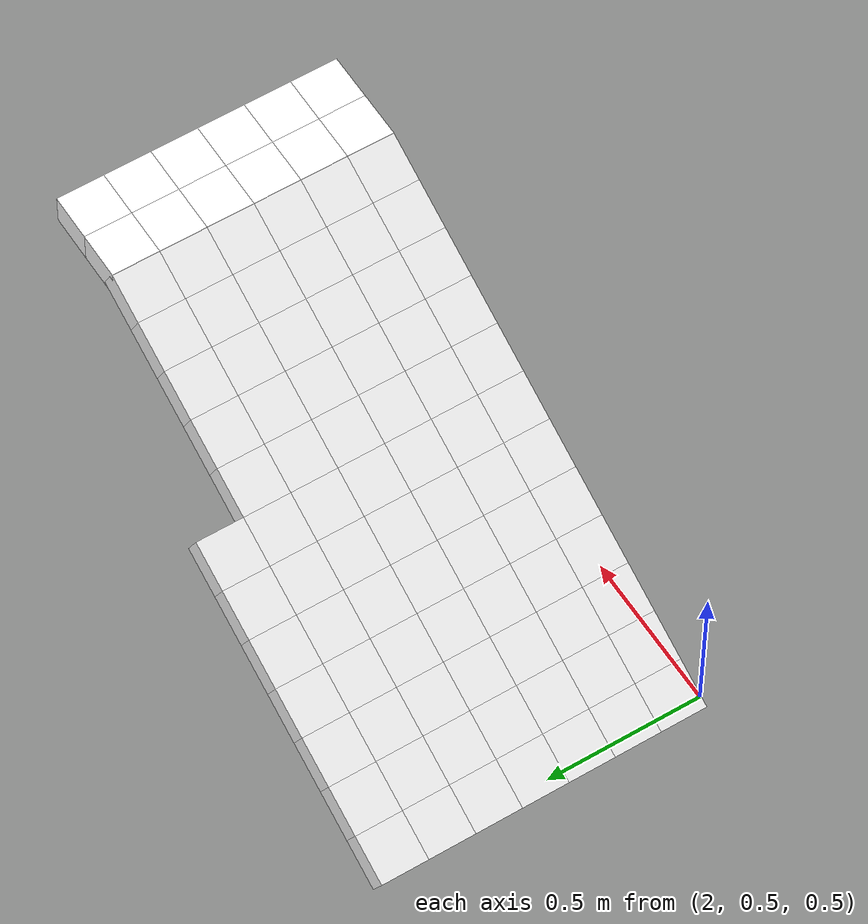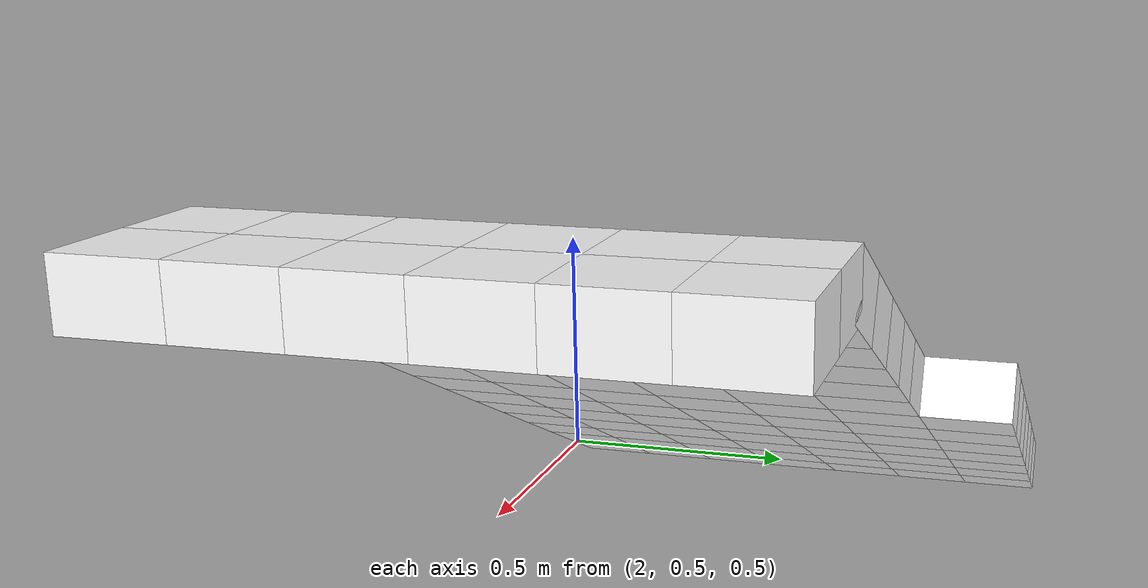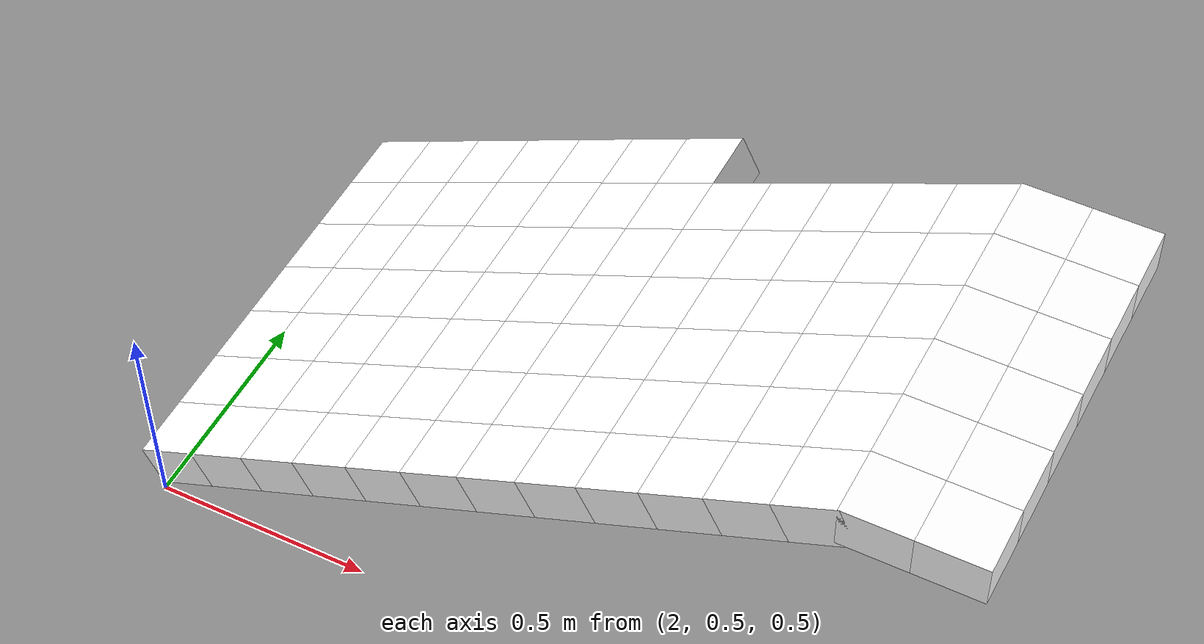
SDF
<sdf version="1.7">
 <world name="default">
  <include><uri>model://sun</uri></include>
  <model name="static_environment">
   <static>true</static>
   <link name="region_408">
    <pose>2.0216838504762515 0.6 0.5544954975637805 0.0 -0.45 0.0</pose>
    <collision name="region_408_collision">
     <geometry><box><size>0.15 0.15 0.1</size></box></geometry>
     <surface><friction><ode><mu>1.0</mu><mu2>1.0</mu2></ode></friction></surface>
    </collision>
    <visual name="region_408_visual">
     <geometry><box><size>0.15 0.15 0.1</size></box></geometry>
     <material><ambient>1.0 1.0 1.0 1.0</ambient><diffuse>1.0 1.0 1.0 1.0</diffuse></material>
    </visual>
   </link>
   <link name="region_409">
    <pose>2.1567509158291527 0.6 0.619740327680465 0.0 -0.45 0.0</pose>
    <collision name="region_409_collision">
     <geometry><box><size>0.15 0.15 0.1</size></box></geometry>
     <surface><friction><ode><mu>1.0</mu><mu2>1.0</mu2></ode></friction></surface>
    </collision>
    <visual name="region_409_visual">
     <geometry><box><size>0.15 0.15 0.1</size></box></geometry>
     <material><ambient>1.0 1.0 1.0 1.0</ambient><diffuse>1.0 1.0 1.0 1.0</diffuse></material>
    </visual>
   </link>
   <link name="region_410">
    <pose>2.2918179811820547 0.6 0.6849851577971496 0.0 -0.45 0.0</pose>
    <collision name="region_410_collision">
     <geometry><box><size>0.15 0.15 0.1</size></box></geometry>
     <surface><friction><ode><mu>1.0</mu><mu2>1.0</mu2></ode></friction></surface>
    </collision>
    <visual name="region_410_visual">
     <geometry><box><size>0.15 0.15 0.1</size></box></geometry>
     <material><ambient>1.0 1.0 1.0 1.0</ambient><diffuse>1.0 1.0 1.0 1.0</diffuse></material>
    </visual>
   </link>
   <link name="region_411">
    <pose>2.426885046534956 0.6 0.7502299879138344 0.0 -0.45 0.0</pose>
    <collision name="region_411_collision">
     <geometry><box><size>0.15 0.15 0.1</size></box></geometry>
     <surface><friction><ode><mu>1.0</mu><mu2>1.0</mu2></ode></friction></surface>
    </collision>
    <visual name="region_411_visual">
     <geometry><box><size>0.15 0.15 0.1</size></box></geometry>
     <material><ambient>1.0 1.0 1.0 1.0</ambient><diffuse>1.0 1.0 1.0 1.0</diffuse></material>
    </visual>
   </link>
   <link name="region_412">
    <pose>2.5619521118878588 0.6 0.815474818030519 0.0 -0.45 0.0</pose>
    <collision name="region_412_collision">
     <geometry><box><size>0.15 0.15 0.1</size></box></geometry>
     <surface><friction><ode><mu>1.0</mu><mu2>1.0</mu2></ode></friction></surface>
    </collision>
    <visual name="region_412_visual">
     <geometry><box><size>0.15 0.15 0.1</size></box></geometry>
     <material><ambient>1.0 1.0 1.0 1.0</ambient><diffuse>1.0 1.0 1.0 1.0</diffuse></material>
    </visual>
   </link>
   <link name="region_413">
    <pose>2.69701917724076 0.6 0.8807196481472036 0.0 -0.45 0.0</pose>
    <collision name="region_413_collision">
     <geometry><box><size>0.15 0.15 0.1</size></box></geometry>
     <surface><friction><ode><mu>1.0</mu><mu2>1.0</mu2></ode></friction></surface>
    </collision>
    <visual name="region_413_visual">
     <geometry><box><size>0.15 0.15 0.1</size></box></geometry>
     <material><ambient>1.0 1.0 1.0 1.0</ambient><diffuse>1.0 1.0 1.0 1.0</diffuse></material>
    </visual>
   </link>
   <link name="region_414">
    <pose>2.832086242593662 0.6 0.9459644782638886 0.0 -0.45 0.0</pose>
    <collision name="region_414_collision">
     <geometry><box><size>0.15 0.15 0.1</size></box></geometry>
     <surface><friction><ode><mu>1.0</mu><mu2>1.0</mu2></ode></friction></surface>
    </collision>
    <visual name="region_414_visual">
     <geometry><box><size>0.15 0.15 0.1</size></box></geometry>
     <material><ambient>1.0 1.0 1.0 1.0</ambient><diffuse>1.0 1.0 1.0 1.0</diffuse></material>
    </visual>
   </link>
   <link name="region_415">
    <pose>2.967153307946564 0.6 1.011209308380573 0.0 -0.45 0.0</pose>
    <collision name="region_415_collision">
     <geometry><box><size>0.15 0.15 0.1</size></box></geometry>
     <surface><friction><ode><mu>1.0</mu><mu2>1.0</mu2></ode></friction></surface>
    </collision>
    <visual name="region_415_visual">
     <geometry><box><size>0.15 0.15 0.1</size></box></geometry>
     <material><ambient>1.0 1.0 1.0 1.0</ambient><diffuse>1.0 1.0 1.0 1.0</diffuse></material>
    </visual>
   </link>
   <link name="region_416">
    <pose>3.102220373299466 0.6 1.0764541384972577 0.0 -0.45 0.0</pose>
    <collision name="region_416_collision">
     <geometry><box><size>0.15 0.15 0.1</size></box></geometry>
     <surface><friction><ode><mu>1.0</mu><mu2>1.0</mu2></ode></friction></surface>
    </collision>
    <visual name="region_416_visual">
     <geometry><box><size>0.15 0.15 0.1</size></box></geometry>
     <material><ambient>1.0 1.0 1.0 1.0</ambient><diffuse>1.0 1.0 1.0 1.0</diffuse></material>
    </visual>
   </link>
   <link name="region_417">
    <pose>3.237287438652367 0.6 1.1416989686139423 0.0 -0.45 0.0</pose>
    <collision name="region_417_collision">
     <geometry><box><size>0.15 0.15 0.1</size></box></geometry>
     <surface><friction><ode><mu>1.0</mu><mu2>1.0</mu2></ode></friction></surface>
    </collision>
    <visual name="region_417_visual">
     <geometry><box><size>0.15 0.15 0.1</size></box></geometry>
     <material><ambient>1.0 1.0 1.0 1.0</ambient><diffuse>1.0 1.0 1.0 1.0</diffuse></material>
    </visual>
   </link>
   <link name="region_418">
    <pose>3.372354504005269 0.6 1.2069437987306273 0.0 -0.45 0.0</pose>
    <collision name="region_418_collision">
     <geometry><box><size>0.15 0.15 0.1</size></box></geometry>
     <surface><friction><ode><mu>1.0</mu><mu2>1.0</mu2></ode></friction></surface>
    </collision>
    <visual name="region_418_visual">
     <geometry><box><size>0.15 0.15 0.1</size></box></geometry>
     <material><ambient>1.0 1.0 1.0 1.0</ambient><diffuse>1.0 1.0 1.0 1.0</diffuse></material>
    </visual>
   </link>
   <link name="region_419">
    <pose>3.507421569358171 0.6 1.2721886288473119 0.0 -0.45 0.0</pose>
    <collision name="region_419_collision">
     <geometry><box><size>0.15 0.15 0.1</size></box></geometry>
     <surface><friction><ode><mu>1.0</mu><mu2>1.0</mu2></ode></friction></surface>
    </collision>
    <visual name="region_419_visual">
     <geometry><box><size>0.15 0.15 0.1</size></box></geometry>
     <material><ambient>1.0 1.0 1.0 1.0</ambient><diffuse>1.0 1.0 1.0 1.0</diffuse></material>
    </visual>
   </link>
   <link name="region_428">
    <pose>2.0216838504762515 0.75 0.5544954975637805 0.0 -0.45 0.0</pose>
    <collision name="region_428_collision">
     <geometry><box><size>0.15 0.15 0.1</size></box></geometry>
     <surface><friction><ode><mu>1.0</mu><mu2>1.0</mu2></ode></friction></surface>
    </collision>
    <visual name="region_428_visual">
     <geometry><box><size>0.15 0.15 0.1</size></box></geometry>
     <material><ambient>1.0 1.0 1.0 1.0</ambient><diffuse>1.0 1.0 1.0 1.0</diffuse></material>
    </visual>
   </link>
   <link name="region_429">
    <pose>2.1567509158291527 0.75 0.619740327680465 0.0 -0.45 0.0</pose>
    <collision name="region_429_collision">
     <geometry><box><size>0.15 0.15 0.1</size></box></geometry>
     <surface><friction><ode><mu>1.0</mu><mu2>1.0</mu2></ode></friction></surface>
    </collision>
    <visual name="region_429_visual">
     <geometry><box><size>0.15 0.15 0.1</size></box></geometry>
     <material><ambient>1.0 1.0 1.0 1.0</ambient><diffuse>1.0 1.0 1.0 1.0</diffuse></material>
    </visual>
   </link>
   <link name="region_430">
    <pose>2.2918179811820547 0.75 0.6849851577971496 0.0 -0.45 0.0</pose>
    <collision name="region_430_collision">
     <geometry><box><size>0.15 0.15 0.1</size></box></geometry>
     <surface><friction><ode><mu>1.0</mu><mu2>1.0</mu2></ode></friction></surface>
    </collision>
    <visual name="region_430_visual">
     <geometry><box><size>0.15 0.15 0.1</size></box></geometry>
     <material><ambient>1.0 1.0 1.0 1.0</ambient><diffuse>1.0 1.0 1.0 1.0</diffuse></material>
    </visual>
   </link>
   <link name="region_431">
    <pose>2.426885046534956 0.75 0.7502299879138344 0.0 -0.45 0.0</pose>
    <collision name="region_431_collision">
     <geometry><box><size>0.15 0.15 0.1</size></box></geometry>
     <surface><friction><ode><mu>1.0</mu><mu2>1.0</mu2></ode></friction></surface>
    </collision>
    <visual name="region_431_visual">
     <geometry><box><size>0.15 0.15 0.1</size></box></geometry>
     <material><ambient>1.0 1.0 1.0 1.0</ambient><diffuse>1.0 1.0 1.0 1.0</diffuse></material>
    </visual>
   </link>
   <link name="region_432">
    <pose>2.5619521118878588 0.75 0.815474818030519 0.0 -0.45 0.0</pose>
    <collision name="region_432_collision">
     <geometry><box><size>0.15 0.15 0.1</size></box></geometry>
     <surface><friction><ode><mu>1.0</mu><mu2>1.0</mu2></ode></friction></surface>
    </collision>
    <visual name="region_432_visual">
     <geometry><box><size>0.15 0.15 0.1</size></box></geometry>
     <material><ambient>1.0 1.0 1.0 1.0</ambient><diffuse>1.0 1.0 1.0 1.0</diffuse></material>
    </visual>
   </link>
   <link name="region_433">
    <pose>2.69701917724076 0.75 0.8807196481472036 0.0 -0.45 0.0</pose>
    <collision name="region_433_collision">
     <geometry><box><size>0.15 0.15 0.1</size></box></geometry>
     <surface><friction><ode><mu>1.0</mu><mu2>1.0</mu2></ode></friction></surface>
    </collision>
    <visual name="region_433_visual">
     <geometry><box><size>0.15 0.15 0.1</size></box></geometry>
     <material><ambient>1.0 1.0 1.0 1.0</ambient><diffuse>1.0 1.0 1.0 1.0</diffuse></material>
    </visual>
   </link>
   <link name="region_434">
    <pose>2.832086242593662 0.75 0.9459644782638886 0.0 -0.45 0.0</pose>
    <collision name="region_434_collision">
     <geometry><box><size>0.15 0.15 0.1</size></box></geometry>
     <surface><friction><ode><mu>1.0</mu><mu2>1.0</mu2></ode></friction></surface>
    </collision>
    <visual name="region_434_visual">
     <geometry><box><size>0.15 0.15 0.1</size></box></geometry>
     <material><ambient>1.0 1.0 1.0 1.0</ambient><diffuse>1.0 1.0 1.0 1.0</diffuse></material>
    </visual>
   </link>
   <link name="region_435">
    <pose>2.967153307946564 0.75 1.011209308380573 0.0 -0.45 0.0</pose>
    <collision name="region_435_collision">
     <geometry><box><size>0.15 0.15 0.1</size></box></geometry>
     <surface><friction><ode><mu>1.0</mu><mu2>1.0</mu2></ode></friction></surface>
    </collision>
    <visual name="region_435_visual">
     <geometry><box><size>0.15 0.15 0.1</size></box></geometry>
     <material><ambient>1.0 1.0 1.0 1.0</ambient><diffuse>1.0 1.0 1.0 1.0</diffuse></material>
    </visual>
   </link>
   <link name="region_436">
    <pose>3.102220373299466 0.75 1.0764541384972577 0.0 -0.45 0.0</pose>
    <collision name="region_436_collision">
     <geometry><box><size>0.15 0.15 0.1</size></box></geometry>
     <surface><friction><ode><mu>1.0</mu><mu2>1.0</mu2></ode></friction></surface>
    </collision>
    <visual name="region_436_visual">
     <geometry><box><size>0.15 0.15 0.1</size></box></geometry>
     <material><ambient>1.0 1.0 1.0 1.0</ambient><diffuse>1.0 1.0 1.0 1.0</diffuse></material>
    </visual>
   </link>
   <link name="region_437">
    <pose>3.237287438652367 0.75 1.1416989686139423 0.0 -0.45 0.0</pose>
    <collision name="region_437_collision">
     <geometry><box><size>0.15 0.15 0.1</size></box></geometry>
     <surface><friction><ode><mu>1.0</mu><mu2>1.0</mu2></ode></friction></surface>
    </collision>
    <visual name="region_437_visual">
     <geometry><box><size>0.15 0.15 0.1</size></box></geometry>
     <material><ambient>1.0 1.0 1.0 1.0</ambient><diffuse>1.0 1.0 1.0 1.0</diffuse></material>
    </visual>
   </link>
   <link name="region_438">
    <pose>3.372354504005269 0.75 1.2069437987306273 0.0 -0.45 0.0</pose>
    <collision name="region_438_collision">
     <geometry><box><size>0.15 0.15 0.1</size></box></geometry>
     <surface><friction><ode><mu>1.0</mu><mu2>1.0</mu2></ode></friction></surface>
    </collision>
    <visual name="region_438_visual">
     <geometry><box><size>0.15 0.15 0.1</size></box></geometry>
     <material><ambient>1.0 1.0 1.0 1.0</ambient><diffuse>1.0 1.0 1.0 1.0</diffuse></material>
    </visual>
   </link>
   <link name="region_439">
    <pose>3.507421569358171 0.75 1.2721886288473119 0.0 -0.45 0.0</pose>
    <collision name="region_439_collision">
     <geometry><box><size>0.15 0.15 0.1</size></box></geometry>
     <surface><friction><ode><mu>1.0</mu><mu2>1.0</mu2></ode></friction></surface>
    </collision>
    <visual name="region_439_visual">
     <geometry><box><size>0.15 0.15 0.1</size></box></geometry>
     <material><ambient>1.0 1.0 1.0 1.0</ambient><diffuse>1.0 1.0 1.0 1.0</diffuse></material>
    </visual>
   </link>
   <link name="region_448">
    <pose>2.0216838504762515 0.8999999999999999 0.5544954975637805 0.0 -0.45 0.0</pose>
    <collision name="region_448_collision">
     <geometry><box><size>0.15 0.15 0.1</size></box></geometry>
     <surface><friction><ode><mu>1.0</mu><mu2>1.0</mu2></ode></friction></surface>
    </collision>
    <visual name="region_448_visual">
     <geometry><box><size>0.15 0.15 0.1</size></box></geometry>
     <material><ambient>1.0 1.0 1.0 1.0</ambient><diffuse>1.0 1.0 1.0 1.0</diffuse></material>
    </visual>
   </link>
   <link name="region_449">
    <pose>2.1567509158291527 0.8999999999999999 0.619740327680465 0.0 -0.45 0.0</pose>
    <collision name="region_449_collision">
     <geometry><box><size>0.15 0.15 0.1</size></box></geometry>
     <surface><friction><ode><mu>1.0</mu><mu2>1.0</mu2></ode></friction></surface>
    </collision>
    <visual name="region_449_visual">
     <geometry><box><size>0.15 0.15 0.1</size></box></geometry>
     <material><ambient>1.0 1.0 1.0 1.0</ambient><diffuse>1.0 1.0 1.0 1.0</diffuse></material>
    </visual>
   </link>
   <link name="region_450">
    <pose>2.2918179811820547 0.8999999999999999 0.6849851577971496 0.0 -0.45 0.0</pose>
    <collision name="region_450_collision">
     <geometry><box><size>0.15 0.15 0.1</size></box></geometry>
     <surface><friction><ode><mu>1.0</mu><mu2>1.0</mu2></ode></friction></surface>
    </collision>
    <visual name="region_450_visual">
     <geometry><box><size>0.15 0.15 0.1</size></box></geometry>
     <material><ambient>1.0 1.0 1.0 1.0</ambient><diffuse>1.0 1.0 1.0 1.0</diffuse></material>
    </visual>
   </link>
   <link name="region_451">
    <pose>2.426885046534956 0.8999999999999999 0.7502299879138344 0.0 -0.45 0.0</pose>
    <collision name="region_451_collision">
     <geometry><box><size>0.15 0.15 0.1</size></box></geometry>
     <surface><friction><ode><mu>1.0</mu><mu2>1.0</mu2></ode></friction></surface>
    </collision>
    <visual name="region_451_visual">
     <geometry><box><size>0.15 0.15 0.1</size></box></geometry>
     <material><ambient>1.0 1.0 1.0 1.0</ambient><diffuse>1.0 1.0 1.0 1.0</diffuse></material>
    </visual>
   </link>
   <link name="region_452">
    <pose>2.5619521118878588 0.8999999999999999 0.815474818030519 0.0 -0.45 0.0</pose>
    <collision name="region_452_collision">
     <geometry><box><size>0.15 0.15 0.1</size></box></geometry>
     <surface><friction><ode><mu>1.0</mu><mu2>1.0</mu2></ode></friction></surface>
    </collision>
    <visual name="region_452_visual">
     <geometry><box><size>0.15 0.15 0.1</size></box></geometry>
     <material><ambient>1.0 1.0 1.0 1.0</ambient><diffuse>1.0 1.0 1.0 1.0</diffuse></material>
    </visual>
   </link>
   <link name="region_453">
    <pose>2.69701917724076 0.8999999999999999 0.8807196481472036 0.0 -0.45 0.0</pose>
    <collision name="region_453_collision">
     <geometry><box><size>0.15 0.15 0.1</size></box></geometry>
     <surface><friction><ode><mu>1.0</mu><mu2>1.0</mu2></ode></friction></surface>
    </collision>
    <visual name="region_453_visual">
     <geometry><box><size>0.15 0.15 0.1</size></box></geometry>
     <material><ambient>1.0 1.0 1.0 1.0</ambient><diffuse>1.0 1.0 1.0 1.0</diffuse></material>
    </visual>
   </link>
   <link name="region_454">
    <pose>2.832086242593662 0.8999999999999999 0.9459644782638886 0.0 -0.45 0.0</pose>
    <collision name="region_454_collision">
     <geometry><box><size>0.15 0.15 0.1</size></box></geometry>
     <surface><friction><ode><mu>1.0</mu><mu2>1.0</mu2></ode></friction></surface>
    </collision>
    <visual name="region_454_visual">
     <geometry><box><size>0.15 0.15 0.1</size></box></geometry>
     <material><ambient>1.0 1.0 1.0 1.0</ambient><diffuse>1.0 1.0 1.0 1.0</diffuse></material>
    </visual>
   </link>
   <link name="region_455">
    <pose>2.967153307946564 0.8999999999999999 1.011209308380573 0.0 -0.45 0.0</pose>
    <collision name="region_455_collision">
     <geometry><box><size>0.15 0.15 0.1</size></box></geometry>
     <surface><friction><ode><mu>1.0</mu><mu2>1.0</mu2></ode></friction></surface>
    </collision>
    <visual name="region_455_visual">
     <geometry><box><size>0.15 0.15 0.1</size></box></geometry>
     <material><ambient>1.0 1.0 1.0 1.0</ambient><diffuse>1.0 1.0 1.0 1.0</diffuse></material>
    </visual>
   </link>
   <link name="region_456">
    <pose>3.102220373299466 0.8999999999999999 1.0764541384972577 0.0 -0.45 0.0</pose>
    <collision name="region_456_collision">
     <geometry><box><size>0.15 0.15 0.1</size></box></geometry>
     <surface><friction><ode><mu>1.0</mu><mu2>1.0</mu2></ode></friction></surface>
    </collision>
    <visual name="region_456_visual">
     <geometry><box><size>0.15 0.15 0.1</size></box></geometry>
     <material><ambient>1.0 1.0 1.0 1.0</ambient><diffuse>1.0 1.0 1.0 1.0</diffuse></material>
    </visual>
   </link>
   <link name="region_457">
    <pose>3.237287438652367 0.8999999999999999 1.1416989686139423 0.0 -0.45 0.0</pose>
    <collision name="region_457_collision">
     <geometry><box><size>0.15 0.15 0.1</size></box></geometry>
     <surface><friction><ode><mu>1.0</mu><mu2>1.0</mu2></ode></friction></surface>
    </collision>
    <visual name="region_457_visual">
     <geometry><box><size>0.15 0.15 0.1</size></box></geometry>
     <material><ambient>1.0 1.0 1.0 1.0</ambient><diffuse>1.0 1.0 1.0 1.0</diffuse></material>
    </visual>
   </link>
   <link name="region_458">
    <pose>3.372354504005269 0.8999999999999999 1.2069437987306273 0.0 -0.45 0.0</pose>
    <collision name="region_458_collision">
     <geometry><box><size>0.15 0.15 0.1</size></box></geometry>
     <surface><friction><ode><mu>1.0</mu><mu2>1.0</mu2></ode></friction></surface>
    </collision>
    <visual name="region_458_visual">
     <geometry><box><size>0.15 0.15 0.1</size></box></geometry>
     <material><ambient>1.0 1.0 1.0 1.0</ambient><diffuse>1.0 1.0 1.0 1.0</diffuse></material>
    </visual>
   </link>
   <link name="region_459">
    <pose>3.507421569358171 0.8999999999999999 1.2721886288473119 0.0 -0.45 0.0</pose>
    <collision name="region_459_collision">
     <geometry><box><size>0.15 0.15 0.1</size></box></geometry>
     <surface><friction><ode><mu>1.0</mu><mu2>1.0</mu2></ode></friction></surface>
    </collision>
    <visual name="region_459_visual">
     <geometry><box><size>0.15 0.15 0.1</size></box></geometry>
     <material><ambient>1.0 1.0 1.0 1.0</ambient><diffuse>1.0 1.0 1.0 1.0</diffuse></material>
    </visual>
   </link>
   <link name="region_468">
    <pose>2.0216838504762515 1.0499999999999998 0.5544954975637805 0.0 -0.45 0.0</pose>
    <collision name="region_468_collision">
     <geometry><box><size>0.15 0.15 0.1</size></box></geometry>
     <surface><friction><ode><mu>1.0</mu><mu2>1.0</mu2></ode></friction></surface>
    </collision>
    <visual name="region_468_visual">
     <geometry><box><size>0.15 0.15 0.1</size></box></geometry>
     <material><ambient>1.0 1.0 1.0 1.0</ambient><diffuse>1.0 1.0 1.0 1.0</diffuse></material>
    </visual>
   </link>
   <link name="region_469">
    <pose>2.1567509158291527 1.0499999999999998 0.619740327680465 0.0 -0.45 0.0</pose>
    <collision name="region_469_collision">
     <geometry><box><size>0.15 0.15 0.1</size></box></geometry>
     <surface><friction><ode><mu>1.0</mu><mu2>1.0</mu2></ode></friction></surface>
    </collision>
    <visual name="region_469_visual">
     <geometry><box><size>0.15 0.15 0.1</size></box></geometry>
     <material><ambient>1.0 1.0 1.0 1.0</ambient><diffuse>1.0 1.0 1.0 1.0</diffuse></material>
    </visual>
   </link>
   <link name="region_470">
    <pose>2.2918179811820547 1.0499999999999998 0.6849851577971496 0.0 -0.45 0.0</pose>
    <collision name="region_470_collision">
     <geometry><box><size>0.15 0.15 0.1</size></box></geometry>
     <surface><friction><ode><mu>1.0</mu><mu2>1.0</mu2></ode></friction></surface>
    </collision>
    <visual name="region_470_visual">
     <geometry><box><size>0.15 0.15 0.1</size></box></geometry>
     <material><ambient>1.0 1.0 1.0 1.0</ambient><diffuse>1.0 1.0 1.0 1.0</diffuse></material>
    </visual>
   </link>
   <link name="region_471">
    <pose>2.426885046534956 1.0499999999999998 0.7502299879138344 0.0 -0.45 0.0</pose>
    <collision name="region_471_collision">
     <geometry><box><size>0.15 0.15 0.1</size></box></geometry>
     <surface><friction><ode><mu>1.0</mu><mu2>1.0</mu2></ode></friction></surface>
    </collision>
    <visual name="region_471_visual">
     <geometry><box><size>0.15 0.15 0.1</size></box></geometry>
     <material><ambient>1.0 1.0 1.0 1.0</ambient><diffuse>1.0 1.0 1.0 1.0</diffuse></material>
    </visual>
   </link>
   <link name="region_472">
    <pose>2.5619521118878588 1.0499999999999998 0.815474818030519 0.0 -0.45 0.0</pose>
    <collision name="region_472_collision">
     <geometry><box><size>0.15 0.15 0.1</size></box></geometry>
     <surface><friction><ode><mu>1.0</mu><mu2>1.0</mu2></ode></friction></surface>
    </collision>
    <visual name="region_472_visual">
     <geometry><box><size>0.15 0.15 0.1</size></box></geometry>
     <material><ambient>1.0 1.0 1.0 1.0</ambient><diffuse>1.0 1.0 1.0 1.0</diffuse></material>
    </visual>
   </link>
   <link name="region_473">
    <pose>2.69701917724076 1.0499999999999998 0.8807196481472036 0.0 -0.45 0.0</pose>
    <collision name="region_473_collision">
     <geometry><box><size>0.15 0.15 0.1</size></box></geometry>
     <surface><friction><ode><mu>1.0</mu><mu2>1.0</mu2></ode></friction></surface>
    </collision>
    <visual name="region_473_visual">
     <geometry><box><size>0.15 0.15 0.1</size></box></geometry>
     <material><ambient>1.0 1.0 1.0 1.0</ambient><diffuse>1.0 1.0 1.0 1.0</diffuse></material>
    </visual>
   </link>
   <link name="region_474">
    <pose>2.832086242593662 1.0499999999999998 0.9459644782638886 0.0 -0.45 0.0</pose>
    <collision name="region_474_collision">
     <geometry><box><size>0.15 0.15 0.1</size></box></geometry>
     <surface><friction><ode><mu>1.0</mu><mu2>1.0</mu2></ode></friction></surface>
    </collision>
    <visual name="region_474_visual">
     <geometry><box><size>0.15 0.15 0.1</size></box></geometry>
     <material><ambient>1.0 1.0 1.0 1.0</ambient><diffuse>1.0 1.0 1.0 1.0</diffuse></material>
    </visual>
   </link>
   <link name="region_475">
    <pose>2.967153307946564 1.0499999999999998 1.011209308380573 0.0 -0.45 0.0</pose>
    <collision name="region_475_collision">
     <geometry><box><size>0.15 0.15 0.1</size></box></geometry>
     <surface><friction><ode><mu>1.0</mu><mu2>1.0</mu2></ode></friction></surface>
    </collision>
    <visual name="region_475_visual">
     <geometry><box><size>0.15 0.15 0.1</size></box></geometry>
     <material><ambient>1.0 1.0 1.0 1.0</ambient><diffuse>1.0 1.0 1.0 1.0</diffuse></material>
    </visual>
   </link>
   <link name="region_476">
    <pose>3.102220373299466 1.0499999999999998 1.0764541384972577 0.0 -0.45 0.0</pose>
    <collision name="region_476_collision">
     <geometry><box><size>0.15 0.15 0.1</size></box></geometry>
     <surface><friction><ode><mu>1.0</mu><mu2>1.0</mu2></ode></friction></surface>
    </collision>
    <visual name="region_476_visual">
     <geometry><box><size>0.15 0.15 0.1</size></box></geometry>
     <material><ambient>1.0 1.0 1.0 1.0</ambient><diffuse>1.0 1.0 1.0 1.0</diffuse></material>
    </visual>
   </link>
   <link name="region_477">
    <pose>3.237287438652367 1.0499999999999998 1.1416989686139423 0.0 -0.45 0.0</pose>
    <collision name="region_477_collision">
     <geometry><box><size>0.15 0.15 0.1</size></box></geometry>
     <surface><friction><ode><mu>1.0</mu><mu2>1.0</mu2></ode></friction></surface>
    </collision>
    <visual name="region_477_visual">
     <geometry><box><size>0.15 0.15 0.1</size></box></geometry>
     <material><ambient>1.0 1.0 1.0 1.0</ambient><diffuse>1.0 1.0 1.0 1.0</diffuse></material>
    </visual>
   </link>
   <link name="region_478">
    <pose>3.372354504005269 1.0499999999999998 1.2069437987306273 0.0 -0.45 0.0</pose>
    <collision name="region_478_collision">
     <geometry><box><size>0.15 0.15 0.1</size></box></geometry>
     <surface><friction><ode><mu>1.0</mu><mu2>1.0</mu2></ode></friction></surface>
    </collision>
    <visual name="region_478_visual">
     <geometry><box><size>0.15 0.15 0.1</size></box></geometry>
     <material><ambient>1.0 1.0 1.0 1.0</ambient><diffuse>1.0 1.0 1.0 1.0</diffuse></material>
    </visual>
   </link>
   <link name="region_479">
    <pose>3.507421569358171 1.0499999999999998 1.2721886288473119 0.0 -0.45 0.0</pose>
    <collision name="region_479_collision">
     <geometry><box><size>0.15 0.15 0.1</size></box></geometry>
     <surface><friction><ode><mu>1.0</mu><mu2>1.0</mu2></ode></friction></surface>
    </collision>
    <visual name="region_479_visual">
     <geometry><box><size>0.15 0.15 0.1</size></box></geometry>
     <material><ambient>1.0 1.0 1.0 1.0</ambient><diffuse>1.0 1.0 1.0 1.0</diffuse></material>
    </visual>
   </link>
   <link name="region_488">
    <pose>2.0216838504762515 1.2 0.5544954975637805 0.0 -0.45 0.0</pose>
    <collision name="region_488_collision">
     <geometry><box><size>0.15 0.15 0.1</size></box></geometry>
     <surface><friction><ode><mu>1.0</mu><mu2>1.0</mu2></ode></friction></surface>
    </collision>
    <visual name="region_488_visual">
     <geometry><box><size>0.15 0.15 0.1</size></box></geometry>
     <material><ambient>1.0 1.0 1.0 1.0</ambient><diffuse>1.0 1.0 1.0 1.0</diffuse></material>
    </visual>
   </link>
   <link name="region_489">
    <pose>2.1567509158291527 1.2 0.619740327680465 0.0 -0.45 0.0</pose>
    <collision name="region_489_collision">
     <geometry><box><size>0.15 0.15 0.1</size></box></geometry>
     <surface><friction><ode><mu>1.0</mu><mu2>1.0</mu2></ode></friction></surface>
    </collision>
    <visual name="region_489_visual">
     <geometry><box><size>0.15 0.15 0.1</size></box></geometry>
     <material><ambient>1.0 1.0 1.0 1.0</ambient><diffuse>1.0 1.0 1.0 1.0</diffuse></material>
    </visual>
   </link>
   <link name="region_490">
    <pose>2.2918179811820547 1.2 0.6849851577971496 0.0 -0.45 0.0</pose>
    <collision name="region_490_collision">
     <geometry><box><size>0.15 0.15 0.1</size></box></geometry>
     <surface><friction><ode><mu>1.0</mu><mu2>1.0</mu2></ode></friction></surface>
    </collision>
    <visual name="region_490_visual">
     <geometry><box><size>0.15 0.15 0.1</size></box></geometry>
     <material><ambient>1.0 1.0 1.0 1.0</ambient><diffuse>1.0 1.0 1.0 1.0</diffuse></material>
    </visual>
   </link>
   <link name="region_491">
    <pose>2.426885046534956 1.2 0.7502299879138344 0.0 -0.45 0.0</pose>
    <collision name="region_491_collision">
     <geometry><box><size>0.15 0.15 0.1</size></box></geometry>
     <surface><friction><ode><mu>1.0</mu><mu2>1.0</mu2></ode></friction></surface>
    </collision>
    <visual name="region_491_visual">
     <geometry><box><size>0.15 0.15 0.1</size></box></geometry>
     <material><ambient>1.0 1.0 1.0 1.0</ambient><diffuse>1.0 1.0 1.0 1.0</diffuse></material>
    </visual>
   </link>
   <link name="region_492">
    <pose>2.5619521118878588 1.2 0.815474818030519 0.0 -0.45 0.0</pose>
    <collision name="region_492_collision">
     <geometry><box><size>0.15 0.15 0.1</size></box></geometry>
     <surface><friction><ode><mu>1.0</mu><mu2>1.0</mu2></ode></friction></surface>
    </collision>
    <visual name="region_492_visual">
     <geometry><box><size>0.15 0.15 0.1</size></box></geometry>
     <material><ambient>1.0 1.0 1.0 1.0</ambient><diffuse>1.0 1.0 1.0 1.0</diffuse></material>
    </visual>
   </link>
   <link name="region_493">
    <pose>2.69701917724076 1.2 0.8807196481472036 0.0 -0.45 0.0</pose>
    <collision name="region_493_collision">
     <geometry><box><size>0.15 0.15 0.1</size></box></geometry>
     <surface><friction><ode><mu>1.0</mu><mu2>1.0</mu2></ode></friction></surface>
    </collision>
    <visual name="region_493_visual">
     <geometry><box><size>0.15 0.15 0.1</size></box></geometry>
     <material><ambient>1.0 1.0 1.0 1.0</ambient><diffuse>1.0 1.0 1.0 1.0</diffuse></material>
    </visual>
   </link>
   <link name="region_494">
    <pose>2.832086242593662 1.2 0.9459644782638886 0.0 -0.45 0.0</pose>
    <collision name="region_494_collision">
     <geometry><box><size>0.15 0.15 0.1</size></box></geometry>
     <surface><friction><ode><mu>1.0</mu><mu2>1.0</mu2></ode></friction></surface>
    </collision>
    <visual name="region_494_visual">
     <geometry><box><size>0.15 0.15 0.1</size></box></geometry>
     <material><ambient>1.0 1.0 1.0 1.0</ambient><diffuse>1.0 1.0 1.0 1.0</diffuse></material>
    </visual>
   </link>
   <link name="region_495">
    <pose>2.967153307946564 1.2 1.011209308380573 0.0 -0.45 0.0</pose>
    <collision name="region_495_collision">
     <geometry><box><size>0.15 0.15 0.1</size></box></geometry>
     <surface><friction><ode><mu>1.0</mu><mu2>1.0</mu2></ode></friction></surface>
    </collision>
    <visual name="region_495_visual">
     <geometry><box><size>0.15 0.15 0.1</size></box></geometry>
     <material><ambient>1.0 1.0 1.0 1.0</ambient><diffuse>1.0 1.0 1.0 1.0</diffuse></material>
    </visual>
   </link>
   <link name="region_496">
    <pose>3.102220373299466 1.2 1.0764541384972577 0.0 -0.45 0.0</pose>
    <collision name="region_496_collision">
     <geometry><box><size>0.15 0.15 0.1</size></box></geometry>
     <surface><friction><ode><mu>1.0</mu><mu2>1.0</mu2></ode></friction></surface>
    </collision>
    <visual name="region_496_visual">
     <geometry><box><size>0.15 0.15 0.1</size></box></geometry>
     <material><ambient>1.0 1.0 1.0 1.0</ambient><diffuse>1.0 1.0 1.0 1.0</diffuse></material>
    </visual>
   </link>
   <link name="region_497">
    <pose>3.237287438652367 1.2 1.1416989686139423 0.0 -0.45 0.0</pose>
    <collision name="region_497_collision">
     <geometry><box><size>0.15 0.15 0.1</size></box></geometry>
     <surface><friction><ode><mu>1.0</mu><mu2>1.0</mu2></ode></friction></surface>
    </collision>
    <visual name="region_497_visual">
     <geometry><box><size>0.15 0.15 0.1</size></box></geometry>
     <material><ambient>1.0 1.0 1.0 1.0</ambient><diffuse>1.0 1.0 1.0 1.0</diffuse></material>
    </visual>
   </link>
   <link name="region_498">
    <pose>3.372354504005269 1.2 1.2069437987306273 0.0 -0.45 0.0</pose>
    <collision name="region_498_collision">
     <geometry><box><size>0.15 0.15 0.1</size></box></geometry>
     <surface><friction><ode><mu>1.0</mu><mu2>1.0</mu2></ode></friction></surface>
    </collision>
    <visual name="region_498_visual">
     <geometry><box><size>0.15 0.15 0.1</size></box></geometry>
     <material><ambient>1.0 1.0 1.0 1.0</ambient><diffuse>1.0 1.0 1.0 1.0</diffuse></material>
    </visual>
   </link>
   <link name="region_499">
    <pose>3.507421569358171 1.2 1.2721886288473119 0.0 -0.45 0.0</pose>
    <collision name="region_499_collision">
     <geometry><box><size>0.15 0.15 0.1</size></box></geometry>
     <surface><friction><ode><mu>1.0</mu><mu2>1.0</mu2></ode></friction></surface>
    </collision>
    <visual name="region_499_visual">
     <geometry><box><size>0.15 0.15 0.1</size></box></geometry>
     <material><ambient>1.0 1.0 1.0 1.0</ambient><diffuse>1.0 1.0 1.0 1.0</diffuse></material>
    </visual>
   </link>
   <link name="region_508">
    <pose>2.0216838504762515 1.35 0.5544954975637805 0.0 -0.45 0.0</pose>
    <collision name="region_508_collision">
     <geometry><box><size>0.15 0.15 0.1</size></box></geometry>
     <surface><friction><ode><mu>1.0</mu><mu2>1.0</mu2></ode></friction></surface>
    </collision>
    <visual name="region_508_visual">
     <geometry><box><size>0.15 0.15 0.1</size></box></geometry>
     <material><ambient>1.0 1.0 1.0 1.0</ambient><diffuse>1.0 1.0 1.0 1.0</diffuse></material>
    </visual>
   </link>
   <link name="region_509">
    <pose>2.1567509158291527 1.35 0.619740327680465 0.0 -0.45 0.0</pose>
    <collision name="region_509_collision">
     <geometry><box><size>0.15 0.15 0.1</size></box></geometry>
     <surface><friction><ode><mu>1.0</mu><mu2>1.0</mu2></ode></friction></surface>
    </collision>
    <visual name="region_509_visual">
     <geometry><box><size>0.15 0.15 0.1</size></box></geometry>
     <material><ambient>1.0 1.0 1.0 1.0</ambient><diffuse>1.0 1.0 1.0 1.0</diffuse></material>
    </visual>
   </link>
   <link name="region_510">
    <pose>2.2918179811820547 1.35 0.6849851577971496 0.0 -0.45 0.0</pose>
    <collision name="region_510_collision">
     <geometry><box><size>0.15 0.15 0.1</size></box></geometry>
     <surface><friction><ode><mu>1.0</mu><mu2>1.0</mu2></ode></friction></surface>
    </collision>
    <visual name="region_510_visual">
     <geometry><box><size>0.15 0.15 0.1</size></box></geometry>
     <material><ambient>1.0 1.0 1.0 1.0</ambient><diffuse>1.0 1.0 1.0 1.0</diffuse></material>
    </visual>
   </link>
   <link name="region_511">
    <pose>2.426885046534956 1.35 0.7502299879138344 0.0 -0.45 0.0</pose>
    <collision name="region_511_collision">
     <geometry><box><size>0.15 0.15 0.1</size></box></geometry>
     <surface><friction><ode><mu>1.0</mu><mu2>1.0</mu2></ode></friction></surface>
    </collision>
    <visual name="region_511_visual">
     <geometry><box><size>0.15 0.15 0.1</size></box></geometry>
     <material><ambient>1.0 1.0 1.0 1.0</ambient><diffuse>1.0 1.0 1.0 1.0</diffuse></material>
    </visual>
   </link>
   <link name="region_512">
    <pose>2.5619521118878588 1.35 0.815474818030519 0.0 -0.45 0.0</pose>
    <collision name="region_512_collision">
     <geometry><box><size>0.15 0.15 0.1</size></box></geometry>
     <surface><friction><ode><mu>1.0</mu><mu2>1.0</mu2></ode></friction></surface>
    </collision>
    <visual name="region_512_visual">
     <geometry><box><size>0.15 0.15 0.1</size></box></geometry>
     <material><ambient>1.0 1.0 1.0 1.0</ambient><diffuse>1.0 1.0 1.0 1.0</diffuse></material>
    </visual>
   </link>
   <link name="region_513">
    <pose>2.69701917724076 1.35 0.8807196481472036 0.0 -0.45 0.0</pose>
    <collision name="region_513_collision">
     <geometry><box><size>0.15 0.15 0.1</size></box></geometry>
     <surface><friction><ode><mu>1.0</mu><mu2>1.0</mu2></ode></friction></surface>
    </collision>
    <visual name="region_513_visual">
     <geometry><box><size>0.15 0.15 0.1</size></box></geometry>
     <material><ambient>1.0 1.0 1.0 1.0</ambient><diffuse>1.0 1.0 1.0 1.0</diffuse></material>
    </visual>
   </link>
   <link name="region_514">
    <pose>2.832086242593662 1.35 0.9459644782638886 0.0 -0.45 0.0</pose>
    <collision name="region_514_collision">
     <geometry><box><size>0.15 0.15 0.1</size></box></geometry>
     <surface><friction><ode><mu>1.0</mu><mu2>1.0</mu2></ode></friction></surface>
    </collision>
    <visual name="region_514_visual">
     <geometry><box><size>0.15 0.15 0.1</size></box></geometry>
     <material><ambient>1.0 1.0 1.0 1.0</ambient><diffuse>1.0 1.0 1.0 1.0</diffuse></material>
    </visual>
   </link>
   <link name="region_515">
    <pose>2.967153307946564 1.35 1.011209308380573 0.0 -0.45 0.0</pose>
    <collision name="region_515_collision">
     <geometry><box><size>0.15 0.15 0.1</size></box></geometry>
     <surface><friction><ode><mu>1.0</mu><mu2>1.0</mu2></ode></friction></surface>
    </collision>
    <visual name="region_515_visual">
     <geometry><box><size>0.15 0.15 0.1</size></box></geometry>
     <material><ambient>1.0 1.0 1.0 1.0</ambient><diffuse>1.0 1.0 1.0 1.0</diffuse></material>
    </visual>
   </link>
   <link name="region_516">
    <pose>3.102220373299466 1.35 1.0764541384972577 0.0 -0.45 0.0</pose>
    <collision name="region_516_collision">
     <geometry><box><size>0.15 0.15 0.1</size></box></geometry>
     <surface><friction><ode><mu>1.0</mu><mu2>1.0</mu2></ode></friction></surface>
    </collision>
    <visual name="region_516_visual">
     <geometry><box><size>0.15 0.15 0.1</size></box></geometry>
     <material><ambient>1.0 1.0 1.0 1.0</ambient><diffuse>1.0 1.0 1.0 1.0</diffuse></material>
    </visual>
   </link>
   <link name="region_517">
    <pose>3.237287438652367 1.35 1.1416989686139423 0.0 -0.45 0.0</pose>
    <collision name="region_517_collision">
     <geometry><box><size>0.15 0.15 0.1</size></box></geometry>
     <surface><friction><ode><mu>1.0</mu><mu2>1.0</mu2></ode></friction></surface>
    </collision>
    <visual name="region_517_visual">
     <geometry><box><size>0.15 0.15 0.1</size></box></geometry>
     <material><ambient>1.0 1.0 1.0 1.0</ambient><diffuse>1.0 1.0 1.0 1.0</diffuse></material>
    </visual>
   </link>
   <link name="region_518">
    <pose>3.372354504005269 1.35 1.2069437987306273 0.0 -0.45 0.0</pose>
    <collision name="region_518_collision">
     <geometry><box><size>0.15 0.15 0.1</size></box></geometry>
     <surface><friction><ode><mu>1.0</mu><mu2>1.0</mu2></ode></friction></surface>
    </collision>
    <visual name="region_518_visual">
     <geometry><box><size>0.15 0.15 0.1</size></box></geometry>
     <material><ambient>1.0 1.0 1.0 1.0</ambient><diffuse>1.0 1.0 1.0 1.0</diffuse></material>
    </visual>
   </link>
   <link name="region_519">
    <pose>3.507421569358171 1.35 1.2721886288473119 0.0 -0.45 0.0</pose>
    <collision name="region_519_collision">
     <geometry><box><size>0.15 0.15 0.1</size></box></geometry>
     <surface><friction><ode><mu>1.0</mu><mu2>1.0</mu2></ode></friction></surface>
    </collision>
    <visual name="region_519_visual">
     <geometry><box><size>0.15 0.15 0.1</size></box></geometry>
     <material><ambient>1.0 1.0 1.0 1.0</ambient><diffuse>1.0 1.0 1.0 1.0</diffuse></material>
    </visual>
   </link>
   <link name="region_528">
    <pose>2.0216838504762515 1.5 0.5544954975637805 0.0 -0.45 0.0</pose>
    <collision name="region_528_collision">
     <geometry><box><size>0.15 0.15 0.1</size></box></geometry>
     <surface><friction><ode><mu>1.0</mu><mu2>1.0</mu2></ode></friction></surface>
    </collision>
    <visual name="region_528_visual">
     <geometry><box><size>0.15 0.15 0.1</size></box></geometry>
     <material><ambient>1.0 1.0 1.0 1.0</ambient><diffuse>1.0 1.0 1.0 1.0</diffuse></material>
    </visual>
   </link>
   <link name="region_529">
    <pose>2.1567509158291527 1.5 0.619740327680465 0.0 -0.45 0.0</pose>
    <collision name="region_529_collision">
     <geometry><box><size>0.15 0.15 0.1</size></box></geometry>
     <surface><friction><ode><mu>1.0</mu><mu2>1.0</mu2></ode></friction></surface>
    </collision>
    <visual name="region_529_visual">
     <geometry><box><size>0.15 0.15 0.1</size></box></geometry>
     <material><ambient>1.0 1.0 1.0 1.0</ambient><diffuse>1.0 1.0 1.0 1.0</diffuse></material>
    </visual>
   </link>
   <link name="region_530">
    <pose>2.2918179811820547 1.5 0.6849851577971496 0.0 -0.45 0.0</pose>
    <collision name="region_530_collision">
     <geometry><box><size>0.15 0.15 0.1</size></box></geometry>
     <surface><friction><ode><mu>1.0</mu><mu2>1.0</mu2></ode></friction></surface>
    </collision>
    <visual name="region_530_visual">
     <geometry><box><size>0.15 0.15 0.1</size></box></geometry>
     <material><ambient>1.0 1.0 1.0 1.0</ambient><diffuse>1.0 1.0 1.0 1.0</diffuse></material>
    </visual>
   </link>
   <link name="region_531">
    <pose>2.426885046534956 1.5 0.7502299879138344 0.0 -0.45 0.0</pose>
    <collision name="region_531_collision">
     <geometry><box><size>0.15 0.15 0.1</size></box></geometry>
     <surface><friction><ode><mu>1.0</mu><mu2>1.0</mu2></ode></friction></surface>
    </collision>
    <visual name="region_531_visual">
     <geometry><box><size>0.15 0.15 0.1</size></box></geometry>
     <material><ambient>1.0 1.0 1.0 1.0</ambient><diffuse>1.0 1.0 1.0 1.0</diffuse></material>
    </visual>
   </link>
   <link name="region_532">
    <pose>2.5619521118878588 1.5 0.815474818030519 0.0 -0.45 0.0</pose>
    <collision name="region_532_collision">
     <geometry><box><size>0.15 0.15 0.1</size></box></geometry>
     <surface><friction><ode><mu>1.0</mu><mu2>1.0</mu2></ode></friction></surface>
    </collision>
    <visual name="region_532_visual">
     <geometry><box><size>0.15 0.15 0.1</size></box></geometry>
     <material><ambient>1.0 1.0 1.0 1.0</ambient><diffuse>1.0 1.0 1.0 1.0</diffuse></material>
    </visual>
   </link>
   <link name="region_533">
    <pose>2.69701917724076 1.5 0.8807196481472036 0.0 -0.45 0.0</pose>
    <collision name="region_533_collision">
     <geometry><box><size>0.15 0.15 0.1</size></box></geometry>
     <surface><friction><ode><mu>1.0</mu><mu2>1.0</mu2></ode></friction></surface>
    </collision>
    <visual name="region_533_visual">
     <geometry><box><size>0.15 0.15 0.1</size></box></geometry>
     <material><ambient>1.0 1.0 1.0 1.0</ambient><diffuse>1.0 1.0 1.0 1.0</diffuse></material>
    </visual>
   </link>
   <link name="region_534">
    <pose>2.832086242593662 1.5 0.9459644782638886 0.0 -0.45 0.0</pose>
    <collision name="region_534_collision">
     <geometry><box><size>0.15 0.15 0.1</size></box></geometry>
     <surface><friction><ode><mu>1.0</mu><mu2>1.0</mu2></ode></friction></surface>
    </collision>
    <visual name="region_534_visual">
     <geometry><box><size>0.15 0.15 0.1</size></box></geometry>
     <material><ambient>1.0 1.0 1.0 1.0</ambient><diffuse>1.0 1.0 1.0 1.0</diffuse></material>
    </visual>
   </link>
   <link name="region_800">
    <pose>3.625 0.6 1.3 0.0 0.0 0.0</pose>
    <collision name="region_800_collision">
     <geometry><box><size>0.15 0.15 0.1</size></box></geometry>
     <surface><friction><ode><mu>1.0</mu><mu2>1.0</mu2></ode></friction></surface>
    </collision>
    <visual name="region_800_visual">
     <geometry><box><size>0.15 0.15 0.1</size></box></geometry>
     <material><ambient>1.0 1.0 1.0 1.0</ambient><diffuse>1.0 1.0 1.0 1.0</diffuse></material>
    </visual>
   </link>
   <link name="region_801">
    <pose>3.7750000000000004 0.6 1.3 0.0 0.0 0.0</pose>
    <collision name="region_801_collision">
     <geometry><box><size>0.15 0.15 0.1</size></box></geometry>
     <surface><friction><ode><mu>1.0</mu><mu2>1.0</mu2></ode></friction></surface>
    </collision>
    <visual name="region_801_visual">
     <geometry><box><size>0.15 0.15 0.1</size></box></geometry>
     <material><ambient>1.0 1.0 1.0 1.0</ambient><diffuse>1.0 1.0 1.0 1.0</diffuse></material>
    </visual>
   </link>
   <link name="region_820">
    <pose>3.625 0.75 1.3 0.0 0.0 0.0</pose>
    <collision name="region_820_collision">
     <geometry><box><size>0.15 0.15 0.1</size></box></geometry>
     <surface><friction><ode><mu>1.0</mu><mu2>1.0</mu2></ode></friction></surface>
    </collision>
    <visual name="region_820_visual">
     <geometry><box><size>0.15 0.15 0.1</size></box></geometry>
     <material><ambient>1.0 1.0 1.0 1.0</ambient><diffuse>1.0 1.0 1.0 1.0</diffuse></material>
    </visual>
   </link>
   <link name="region_821">
    <pose>3.7750000000000004 0.75 1.3 0.0 0.0 0.0</pose>
    <collision name="region_821_collision">
     <geometry><box><size>0.15 0.15 0.1</size></box></geometry>
     <surface><friction><ode><mu>1.0</mu><mu2>1.0</mu2></ode></friction></surface>
    </collision>
    <visual name="region_821_visual">
     <geometry><box><size>0.15 0.15 0.1</size></box></geometry>
     <material><ambient>1.0 1.0 1.0 1.0</ambient><diffuse>1.0 1.0 1.0 1.0</diffuse></material>
    </visual>
   </link>
   <link name="region_840">
    <pose>3.625 0.8999999999999999 1.3 0.0 0.0 0.0</pose>
    <collision name="region_840_collision">
     <geometry><box><size>0.15 0.15 0.1</size></box></geometry>
     <surface><friction><ode><mu>1.0</mu><mu2>1.0</mu2></ode></friction></surface>
    </collision>
    <visual name="region_840_visual">
     <geometry><box><size>0.15 0.15 0.1</size></box></geometry>
     <material><ambient>1.0 1.0 1.0 1.0</ambient><diffuse>1.0 1.0 1.0 1.0</diffuse></material>
    </visual>
   </link>
   <link name="region_841">
    <pose>3.7750000000000004 0.8999999999999999 1.3 0.0 0.0 0.0</pose>
    <collision name="region_841_collision">
     <geometry><box><size>0.15 0.15 0.1</size></box></geometry>
     <surface><friction><ode><mu>1.0</mu><mu2>1.0</mu2></ode></friction></surface>
    </collision>
    <visual name="region_841_visual">
     <geometry><box><size>0.15 0.15 0.1</size></box></geometry>
     <material><ambient>1.0 1.0 1.0 1.0</ambient><diffuse>1.0 1.0 1.0 1.0</diffuse></material>
    </visual>
   </link>
   <link name="region_860">
    <pose>3.625 1.0499999999999998 1.3 0.0 0.0 0.0</pose>
    <collision name="region_860_collision">
     <geometry><box><size>0.15 0.15 0.1</size></box></geometry>
     <surface><friction><ode><mu>1.0</mu><mu2>1.0</mu2></ode></friction></surface>
    </collision>
    <visual name="region_860_visual">
     <geometry><box><size>0.15 0.15 0.1</size></box></geometry>
     <material><ambient>1.0 1.0 1.0 1.0</ambient><diffuse>1.0 1.0 1.0 1.0</diffuse></material>
    </visual>
   </link>
   <link name="region_861">
    <pose>3.7750000000000004 1.0499999999999998 1.3 0.0 0.0 0.0</pose>
    <collision name="region_861_collision">
     <geometry><box><size>0.15 0.15 0.1</size></box></geometry>
     <surface><friction><ode><mu>1.0</mu><mu2>1.0</mu2></ode></friction></surface>
    </collision>
    <visual name="region_861_visual">
     <geometry><box><size>0.15 0.15 0.1</size></box></geometry>
     <material><ambient>1.0 1.0 1.0 1.0</ambient><diffuse>1.0 1.0 1.0 1.0</diffuse></material>
    </visual>
   </link>
   <link name="region_880">
    <pose>3.625 1.2 1.3 0.0 0.0 0.0</pose>
    <collision name="region_880_collision">
     <geometry><box><size>0.15 0.15 0.1</size></box></geometry>
     <surface><friction><ode><mu>1.0</mu><mu2>1.0</mu2></ode></friction></surface>
    </collision>
    <visual name="region_880_visual">
     <geometry><box><size>0.15 0.15 0.1</size></box></geometry>
     <material><ambient>1.0 1.0 1.0 1.0</ambient><diffuse>1.0 1.0 1.0 1.0</diffuse></material>
    </visual>
   </link>
   <link name="region_881">
    <pose>3.7750000000000004 1.2 1.3 0.0 0.0 0.0</pose>
    <collision name="region_881_collision">
     <geometry><box><size>0.15 0.15 0.1</size></box></geometry>
     <surface><friction><ode><mu>1.0</mu><mu2>1.0</mu2></ode></friction></surface>
    </collision>
    <visual name="region_881_visual">
     <geometry><box><size>0.15 0.15 0.1</size></box></geometry>
     <material><ambient>1.0 1.0 1.0 1.0</ambient><diffuse>1.0 1.0 1.0 1.0</diffuse></material>
    </visual>
   </link>
   <link name="region_900">
    <pose>3.625 1.35 1.3 0.0 0.0 0.0</pose>
    <collision name="region_900_collision">
     <geometry><box><size>0.15 0.15 0.1</size></box></geometry>
     <surface><friction><ode><mu>1.0</mu><mu2>1.0</mu2></ode></friction></surface>
    </collision>
    <visual name="region_900_visual">
     <geometry><box><size>0.15 0.15 0.1</size></box></geometry>
     <material><ambient>1.0 1.0 1.0 1.0</ambient><diffuse>1.0 1.0 1.0 1.0</diffuse></material>
    </visual>
   </link>
   <link name="region_901">
    <pose>3.7750000000000004 1.35 1.3 0.0 0.0 0.0</pose>
    <collision name="region_901_collision">
     <geometry><box><size>0.15 0.15 0.1</size></box></geometry>
     <surface><friction><ode><mu>1.0</mu><mu2>1.0</mu2></ode></friction></surface>
    </collision>
    <visual name="region_901_visual">
     <geometry><box><size>0.15 0.15 0.1</size></box></geometry>
     <material><ambient>1.0 1.0 1.0 1.0</ambient><diffuse>1.0 1.0 1.0 1.0</diffuse></material>
    </visual>
   </link>
  </model>
 </world>
</sdf>
